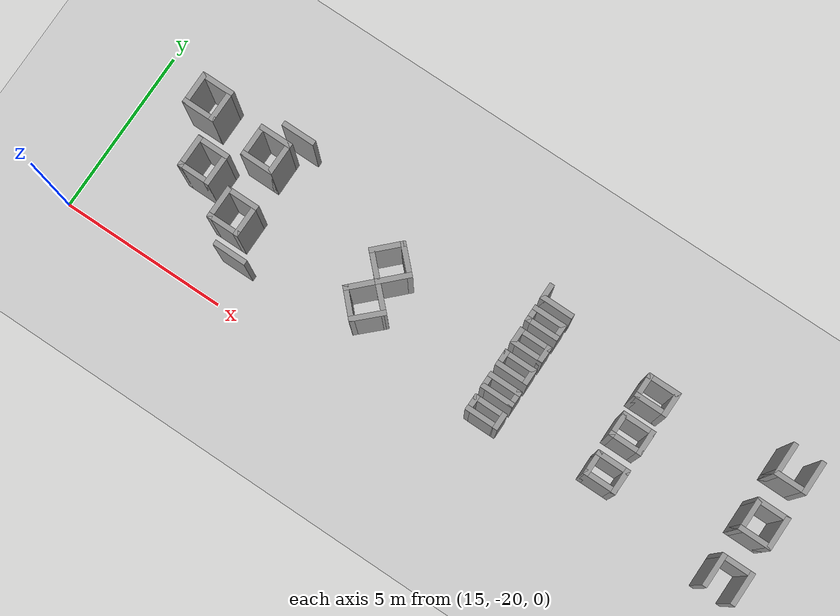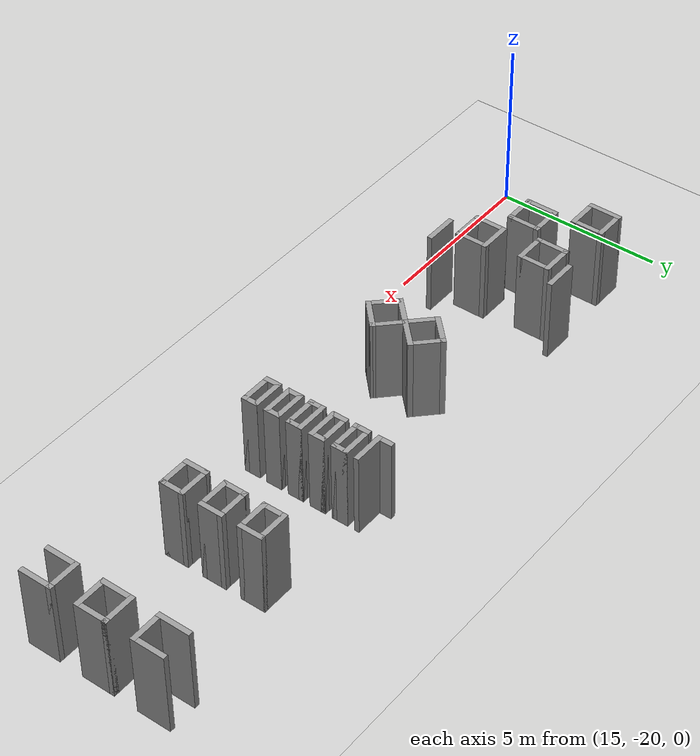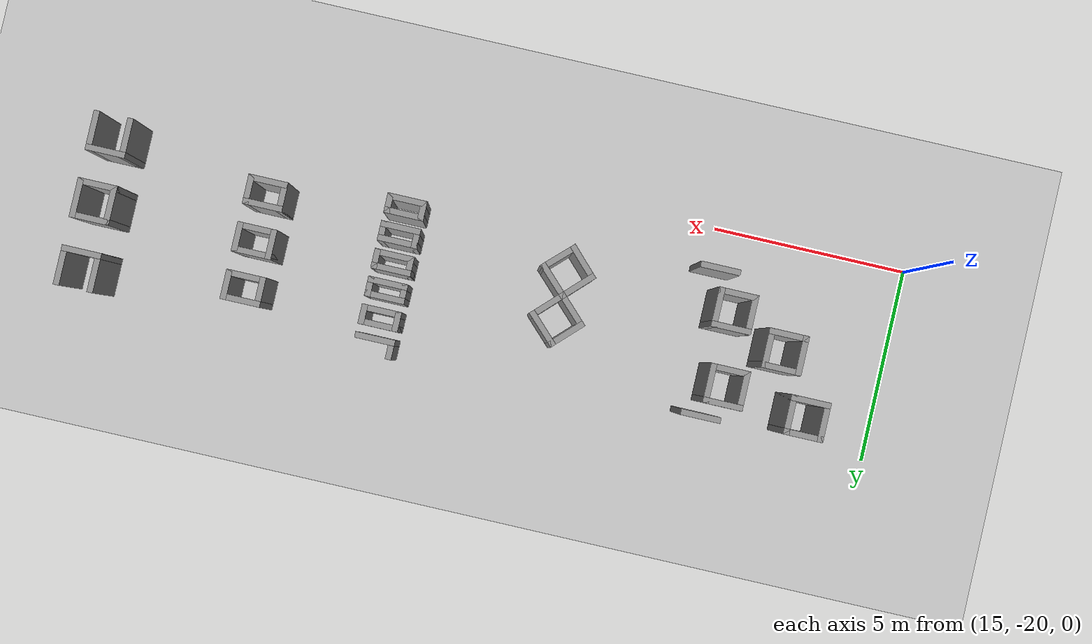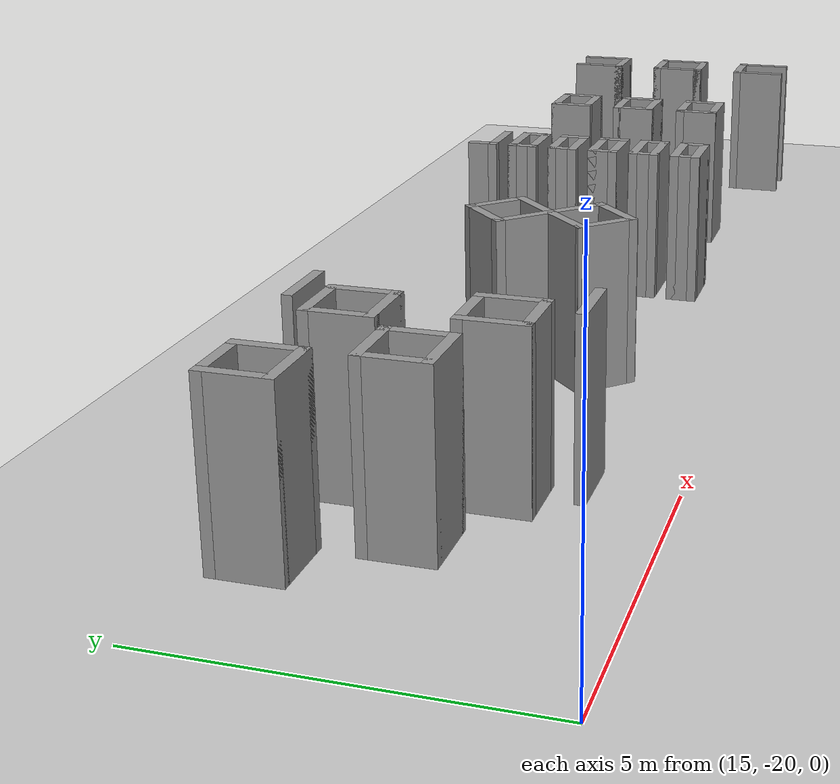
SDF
<sdf version="1.6">
 <world name="default">
  <model name="ground_plane">
   <static>1</static>
   <link name="link">
    <collision name="collision">
     <geometry><plane><normal>0 0 1</normal><size>300 300</size></plane></geometry>
     <surface>
      <contact><collide_bitmask>65535</collide_bitmask></contact>
      <friction><ode><mu>100</mu><mu2>50</mu2></ode></friction>
     </surface>
    </collision>
    <visual name="visual">
     <cast_shadows>0</cast_shadows>
     <geometry><plane><normal>0 0 1</normal><size>300 300</size></plane></geometry>
     <material>
      <script><uri>file://media/materials/scripts/gazebo.material</uri><name>Gazebo/Grey</name></script>
     </material>
    </visual>
   </link>
  </model>
  <model name="NIK">
   <pose>-0.005548 -3.7937 0 0 -0 0</pose>
   <link name="Wall_262">
    <collision name="Wall_262_Collision">
     <geometry><box><size>1 0.15 2.5</size></box></geometry>
     <pose>0 0 1.25 0 -0 0</pose>
    </collision>
    <visual name="Wall_262_Visual">
     <pose>0 0 1.25 0 -0 0</pose>
     <geometry><box><size>1 0.15 2.5</size></box></geometry>
     <material>
      <script><uri>file://media/materials/scripts/gazebo.material</uri><name>Gazebo/Grey</name></script>
      <ambient>1 1 1 1</ambient>
     </material>
     <meta><layer>0</layer></meta>
    </visual>
    <pose>16.626 -11.9351 0 0 -0 -1.5708</pose>
   </link>
   <link name="Wall_263">
    <collision name="Wall_263_Collision">
     <geometry><box><size>1 0.15 2.5</size></box></geometry>
     <pose>0 0 1.25 0 -0 0</pose>
    </collision>
    <visual name="Wall_263_Visual">
     <pose>0 0 1.25 0 -0 0</pose>
     <geometry><box><size>1 0.15 2.5</size></box></geometry>
     <material>
      <script><uri>file://media/materials/scripts/gazebo.material</uri><name>Gazebo/Grey</name></script>
      <ambient>1 1 1 1</ambient>
     </material>
     <meta><layer>0</layer></meta>
    </visual>
    <pose>17.051 -12.3601 0 0 -0 0</pose>
   </link>
   <link name="Wall_264">
    <collision name="Wall_264_Collision">
     <geometry><box><size>1 0.15 2.5</size></box></geometry>
     <pose>0 0 1.25 0 -0 0</pose>
    </collision>
    <visual name="Wall_264_Visual">
     <pose>0 0 1.25 0 -0 0</pose>
     <geometry><box><size>1 0.15 2.5</size></box></geometry>
     <material>
      <script><uri>file://media/materials/scripts/gazebo.material</uri><name>Gazebo/Grey</name></script>
      <ambient>1 1 1 1</ambient>
     </material>
     <meta><layer>0</layer></meta>
    </visual>
    <pose>17.476 -11.9351 0 0 -0 1.5708</pose>
   </link>
   <link name="Wall_265">
    <collision name="Wall_265_Collision">
     <geometry><box><size>1 0.15 2.5</size></box></geometry>
     <pose>0 0 1.25 0 -0 0</pose>
    </collision>
    <visual name="Wall_265_Visual">
     <pose>0 0 1.25 0 -0 0</pose>
     <geometry><box><size>1 0.15 2.5</size></box></geometry>
     <material>
      <script><uri>file://media/materials/scripts/gazebo.material</uri><name>Gazebo/Grey</name></script>
      <ambient>1 1 1 1</ambient>
     </material>
     <meta><layer>0</layer></meta>
    </visual>
    <pose>17.051 -11.5101 0 0 -0 3.14159</pose>
   </link>
   <link name="Wall_267">
    <collision name="Wall_267_Collision">
     <geometry><box><size>1 0.15 2.5</size></box></geometry>
     <pose>0 0 1.25 0 -0 0</pose>
    </collision>
    <visual name="Wall_267_Visual">
     <pose>0 0 1.25 0 -0 0</pose>
     <geometry><box><size>1 0.15 2.5</size></box></geometry>
     <material>
      <script><uri>file://media/materials/scripts/gazebo.material</uri><name>Gazebo/Grey</name></script>
      <ambient>1 1 1 1</ambient>
     </material>
     <meta><layer>0</layer></meta>
    </visual>
    <pose>17.5056 -13.4089 0 0 -0 -1.5708</pose>
   </link>
   <link name="Wall_268">
    <collision name="Wall_268_Collision">
     <geometry><box><size>1 0.15 2.5</size></box></geometry>
     <pose>0 0 1.25 0 -0 0</pose>
    </collision>
    <visual name="Wall_268_Visual">
     <pose>0 0 1.25 0 -0 0</pose>
     <geometry><box><size>1 0.15 2.5</size></box></geometry>
     <material>
      <script><uri>file://media/materials/scripts/gazebo.material</uri><name>Gazebo/Grey</name></script>
      <ambient>1 1 1 1</ambient>
     </material>
     <meta><layer>0</layer></meta>
    </visual>
    <pose>17.9306 -13.8339 0 0 -0 0</pose>
   </link>
   <link name="Wall_269">
    <collision name="Wall_269_Collision">
     <geometry><box><size>1 0.15 2.5</size></box></geometry>
     <pose>0 0 1.25 0 -0 0</pose>
    </collision>
    <visual name="Wall_269_Visual">
     <pose>0 0 1.25 0 -0 0</pose>
     <geometry><box><size>1 0.15 2.5</size></box></geometry>
     <material>
      <script><uri>file://media/materials/scripts/gazebo.material</uri><name>Gazebo/Grey</name></script>
      <ambient>1 1 1 1</ambient>
     </material>
     <meta><layer>0</layer></meta>
    </visual>
    <pose>18.3556 -13.4089 0 0 -0 1.5708</pose>
   </link>
   <link name="Wall_270">
    <collision name="Wall_270_Collision">
     <geometry><box><size>1 0.15 2.5</size></box></geometry>
     <pose>0 0 1.25 0 -0 0</pose>
    </collision>
    <visual name="Wall_270_Visual">
     <pose>0 0 1.25 0 -0 0</pose>
     <geometry><box><size>1 0.15 2.5</size></box></geometry>
     <material>
      <script><uri>file://media/materials/scripts/gazebo.material</uri><name>Gazebo/Grey</name></script>
      <ambient>1 1 1 1</ambient>
     </material>
     <meta><layer>0</layer></meta>
    </visual>
    <pose>17.9306 -12.9839 0 0 -0 3.14159</pose>
   </link>
   <link name="Wall_272">
    <collision name="Wall_272_Collision">
     <geometry><box><size>1 0.15 2.5</size></box></geometry>
     <pose>0 0 1.25 0 -0 0</pose>
    </collision>
    <visual name="Wall_272_Visual">
     <pose>0 0 1.25 0 -0 0</pose>
     <geometry><box><size>1 0.15 2.5</size></box></geometry>
     <material>
      <script><uri>file://media/materials/scripts/gazebo.material</uri><name>Gazebo/Grey</name></script>
      <ambient>1 1 1 1</ambient>
     </material>
     <meta><layer>0</layer></meta>
    </visual>
    <pose>18.7179 -12.2441 0 0 -0 -1.5708</pose>
   </link>
   <link name="Wall_273">
    <collision name="Wall_273_Collision">
     <geometry><box><size>1 0.15 2.5</size></box></geometry>
     <pose>0 0 1.25 0 -0 0</pose>
    </collision>
    <visual name="Wall_273_Visual">
     <pose>0 0 1.25 0 -0 0</pose>
     <geometry><box><size>1 0.15 2.5</size></box></geometry>
     <material>
      <script><uri>file://media/materials/scripts/gazebo.material</uri><name>Gazebo/Grey</name></script>
      <ambient>1 1 1 1</ambient>
     </material>
     <meta><layer>0</layer></meta>
    </visual>
    <pose>19.1429 -12.6691 0 0 -0 0</pose>
   </link>
   <link name="Wall_274">
    <collision name="Wall_274_Collision">
     <geometry><box><size>1 0.15 2.5</size></box></geometry>
     <pose>0 0 1.25 0 -0 0</pose>
    </collision>
    <visual name="Wall_274_Visual">
     <pose>0 0 1.25 0 -0 0</pose>
     <geometry><box><size>1 0.15 2.5</size></box></geometry>
     <material>
      <script><uri>file://media/materials/scripts/gazebo.material</uri><name>Gazebo/Grey</name></script>
      <ambient>1 1 1 1</ambient>
     </material>
     <meta><layer>0</layer></meta>
    </visual>
    <pose>19.5679 -12.2441 0 0 -0 1.5708</pose>
   </link>
   <link name="Wall_275">
    <collision name="Wall_275_Collision">
     <geometry><box><size>1 0.15 2.5</size></box></geometry>
     <pose>0 0 1.25 0 -0 0</pose>
    </collision>
    <visual name="Wall_275_Visual">
     <pose>0 0 1.25 0 -0 0</pose>
     <geometry><box><size>1 0.15 2.5</size></box></geometry>
     <material>
      <script><uri>file://media/materials/scripts/gazebo.material</uri><name>Gazebo/Grey</name></script>
      <ambient>1 1 1 1</ambient>
     </material>
     <meta><layer>0</layer></meta>
    </visual>
    <pose>19.1429 -11.8191 0 0 -0 3.14159</pose>
   </link>
   <link name="Wall_277">
    <collision name="Wall_277_Collision">
     <geometry><box><size>1 0.15 2.5</size></box></geometry>
     <pose>0 0 1.25 0 -0 0</pose>
    </collision>
    <visual name="Wall_277_Visual">
     <pose>0 0 1.25 0 -0 0</pose>
     <geometry><box><size>1 0.15 2.5</size></box></geometry>
     <material>
      <script><uri>file://media/materials/scripts/gazebo.material</uri><name>Gazebo/Grey</name></script>
      <ambient>1 1 1 1</ambient>
     </material>
     <meta><layer>0</layer></meta>
    </visual>
    <pose>18.9319 -14.1101 0 0 -0 -1.5708</pose>
   </link>
   <link name="Wall_278">
    <collision name="Wall_278_Collision">
     <geometry><box><size>1 0.15 2.5</size></box></geometry>
     <pose>0 0 1.25 0 -0 0</pose>
    </collision>
    <visual name="Wall_278_Visual">
     <pose>0 0 1.25 0 -0 0</pose>
     <geometry><box><size>1 0.15 2.5</size></box></geometry>
     <material>
      <script><uri>file://media/materials/scripts/gazebo.material</uri><name>Gazebo/Grey</name></script>
      <ambient>1 1 1 1</ambient>
     </material>
     <meta><layer>0</layer></meta>
    </visual>
    <pose>19.3569 -14.5351 0 0 -0 0</pose>
   </link>
   <link name="Wall_279">
    <collision name="Wall_279_Collision">
     <geometry><box><size>1 0.15 2.5</size></box></geometry>
     <pose>0 0 1.25 0 -0 0</pose>
    </collision>
    <visual name="Wall_279_Visual">
     <pose>0 0 1.25 0 -0 0</pose>
     <geometry><box><size>1 0.15 2.5</size></box></geometry>
     <material>
      <script><uri>file://media/materials/scripts/gazebo.material</uri><name>Gazebo/Grey</name></script>
      <ambient>1 1 1 1</ambient>
     </material>
     <meta><layer>0</layer></meta>
    </visual>
    <pose>19.7819 -14.1101 0 0 -0 1.5708</pose>
   </link>
   <link name="Wall_280">
    <collision name="Wall_280_Collision">
     <geometry><box><size>1 0.15 2.5</size></box></geometry>
     <pose>0 0 1.25 0 -0 0</pose>
    </collision>
    <visual name="Wall_280_Visual">
     <pose>0 0 1.25 0 -0 0</pose>
     <geometry><box><size>1 0.15 2.5</size></box></geometry>
     <material>
      <script><uri>file://media/materials/scripts/gazebo.material</uri><name>Gazebo/Grey</name></script>
      <ambient>1 1 1 1</ambient>
     </material>
     <meta><layer>0</layer></meta>
    </visual>
    <pose>19.3569 -13.6851 0 0 -0 3.14159</pose>
   </link>
   <link name="Wall_283">
    <collision name="Wall_283_Collision">
     <geometry><box><size>1 0.15 2.5</size></box></geometry>
     <pose>0 0 1.25 0 -0 0</pose>
    </collision>
    <visual name="Wall_283_Visual">
     <pose>0 0 1.25 0 -0 0</pose>
     <geometry><box><size>1 0.15 2.5</size></box></geometry>
     <material>
      <script><uri>file://media/materials/scripts/gazebo.material</uri><name>Gazebo/Grey</name></script>
      <ambient>1 1 1 1</ambient>
     </material>
     <meta><layer>0</layer></meta>
    </visual>
    <pose>19.6065 -11.4088 0 0 -0 0</pose>
   </link>
   <link name="Wall_291">
    <collision name="Wall_291_Collision">
     <geometry><box><size>1 0.15 2.5</size></box></geometry>
     <pose>0 0 1.25 0 -0 0</pose>
    </collision>
    <visual name="Wall_291_Visual">
     <pose>0 0 1.25 0 -0 0</pose>
     <geometry><box><size>1 0.15 2.5</size></box></geometry>
     <material>
      <script><uri>file://media/materials/scripts/gazebo.material</uri><name>Gazebo/Grey</name></script>
      <ambient>1 1 1 1</ambient>
     </material>
     <meta><layer>0</layer></meta>
    </visual>
    <pose>19.9274 -15.052 0 0 -0 3.14159</pose>
   </link>
   <link name="Wall_311">
    <collision name="Wall_311_Collision">
     <geometry><box><size>1 0.15 2.5</size></box></geometry>
     <pose>0 0 1.25 0 -0 0</pose>
    </collision>
    <visual name="Wall_311_Visual">
     <pose>0 0 1.25 0 -0 0</pose>
     <geometry><box><size>1 0.15 2.5</size></box></geometry>
     <material>
      <script><uri>file://media/materials/scripts/gazebo.material</uri><name>Gazebo/Grey</name></script>
      <ambient>1 1 1 1</ambient>
     </material>
     <meta><layer>0</layer></meta>
    </visual>
    <pose>35.7405 -14.9025 0 0 -0 1.5708</pose>
   </link>
   <link name="Wall_313">
    <collision name="Wall_313_Collision">
     <geometry><box><size>1 0.15 2.5</size></box></geometry>
     <pose>0 0 1.25 0 -0 0</pose>
    </collision>
    <visual name="Wall_313_Visual">
     <pose>0 0 1.25 0 -0 0</pose>
     <geometry><box><size>1 0.15 2.5</size></box></geometry>
     <material>
      <script><uri>file://media/materials/scripts/gazebo.material</uri><name>Gazebo/Grey</name></script>
      <ambient>1 1 1 1</ambient>
     </material>
     <meta><layer>0</layer></meta>
    </visual>
    <pose>35.7405 -13.2025 0 0 -0 1.5708</pose>
   </link>
   <link name="Wall_315">
    <collision name="Wall_315_Collision">
     <geometry><box><size>1 0.15 2.5</size></box></geometry>
     <pose>0 0 1.25 0 -0 0</pose>
    </collision>
    <visual name="Wall_315_Visual">
     <pose>0 0 1.25 0 -0 0</pose>
     <geometry><box><size>1 0.15 2.5</size></box></geometry>
     <material>
      <script><uri>file://media/materials/scripts/gazebo.material</uri><name>Gazebo/Grey</name></script>
      <ambient>1 1 1 1</ambient>
     </material>
     <meta><layer>0</layer></meta>
    </visual>
    <pose>35.7405 -11.5025 0 0 -0 1.5708</pose>
   </link>
   <link name="Wall_324">
    <collision name="Wall_324_Collision">
     <geometry><box><size>1 0.15 2.5</size></box></geometry>
     <pose>0 0 1.25 0 -0 0</pose>
    </collision>
    <visual name="Wall_324_Visual">
     <pose>0 0 1.25 0 -0 0</pose>
     <geometry><box><size>1 0.15 2.5</size></box></geometry>
     <material>
      <script><uri>file://media/materials/scripts/gazebo.material</uri><name>Gazebo/Grey</name></script>
      <ambient>1 1 1 1</ambient>
     </material>
     <meta><layer>0</layer></meta>
    </visual>
    <pose>34.8905 -11.5025 0 0 -0 -1.5708</pose>
   </link>
   <link name="Wall_325">
    <collision name="Wall_325_Collision">
     <geometry><box><size>1 0.15 2.5</size></box></geometry>
     <pose>0 0 1.25 0 -0 0</pose>
    </collision>
    <visual name="Wall_325_Visual">
     <pose>0 0 1.25 0 -0 0</pose>
     <geometry><box><size>1 0.15 2.5</size></box></geometry>
     <material>
      <script><uri>file://media/materials/scripts/gazebo.material</uri><name>Gazebo/Grey</name></script>
      <ambient>1 1 1 1</ambient>
     </material>
     <meta><layer>0</layer></meta>
    </visual>
    <pose>35.3155 -11.9275 0 0 -0 0</pose>
   </link>
   <link name="Wall_327">
    <collision name="Wall_327_Collision">
     <geometry><box><size>1 0.15 2.5</size></box></geometry>
     <pose>0 0 1.25 0 -0 0</pose>
    </collision>
    <visual name="Wall_327_Visual">
     <pose>0 0 1.25 0 -0 0</pose>
     <geometry><box><size>1 0.15 2.5</size></box></geometry>
     <material>
      <script><uri>file://media/materials/scripts/gazebo.material</uri><name>Gazebo/Grey</name></script>
      <ambient>1 1 1 1</ambient>
     </material>
     <meta><layer>0</layer></meta>
    </visual>
    <pose>35.3155 -12.7775 0 0 -0 3.14159</pose>
   </link>
   <link name="Wall_328">
    <collision name="Wall_328_Collision">
     <geometry><box><size>1 0.15 2.5</size></box></geometry>
     <pose>0 0 1.25 0 -0 0</pose>
    </collision>
    <visual name="Wall_328_Visual">
     <pose>0 0 1.25 0 -0 0</pose>
     <geometry><box><size>1 0.15 2.5</size></box></geometry>
     <material>
      <script><uri>file://media/materials/scripts/gazebo.material</uri><name>Gazebo/Grey</name></script>
      <ambient>1 1 1 1</ambient>
     </material>
     <meta><layer>0</layer></meta>
    </visual>
    <pose>34.8905 -13.2025 0 0 -0 -1.5708</pose>
   </link>
   <link name="Wall_329">
    <collision name="Wall_329_Collision">
     <geometry><box><size>1 0.15 2.5</size></box></geometry>
     <pose>0 0 1.25 0 -0 0</pose>
    </collision>
    <visual name="Wall_329_Visual">
     <pose>0 0 1.25 0 -0 0</pose>
     <geometry><box><size>1 0.15 2.5</size></box></geometry>
     <material>
      <script><uri>file://media/materials/scripts/gazebo.material</uri><name>Gazebo/Grey</name></script>
      <ambient>1 1 1 1</ambient>
     </material>
     <meta><layer>0</layer></meta>
    </visual>
    <pose>35.3155 -13.6275 0 0 -0 0</pose>
   </link>
   <link name="Wall_331">
    <collision name="Wall_331_Collision">
     <geometry><box><size>1 0.15 2.5</size></box></geometry>
     <pose>0 0 1.25 0 -0 0</pose>
    </collision>
    <visual name="Wall_331_Visual">
     <pose>0 0 1.25 0 -0 0</pose>
     <geometry><box><size>1 0.15 2.5</size></box></geometry>
     <material>
      <script><uri>file://media/materials/scripts/gazebo.material</uri><name>Gazebo/Grey</name></script>
      <ambient>1 1 1 1</ambient>
     </material>
     <meta><layer>0</layer></meta>
    </visual>
    <pose>35.3155 -14.4775 0 0 -0 3.14159</pose>
   </link>
   <link name="Wall_332">
    <collision name="Wall_332_Collision">
     <geometry><box><size>1 0.15 2.5</size></box></geometry>
     <pose>0 0 1.25 0 -0 0</pose>
    </collision>
    <visual name="Wall_332_Visual">
     <pose>0 0 1.25 0 -0 0</pose>
     <geometry><box><size>1 0.15 2.5</size></box></geometry>
     <material>
      <script><uri>file://media/materials/scripts/gazebo.material</uri><name>Gazebo/Grey</name></script>
      <ambient>1 1 1 1</ambient>
     </material>
     <meta><layer>0</layer></meta>
    </visual>
    <pose>34.8905 -14.9025 0 0 -0 -1.5708</pose>
   </link>
   <link name="Wall_342">
    <collision name="Wall_342_Collision">
     <geometry><box><size>0.75 0.15 2.5</size></box></geometry>
     <pose>0 0 1.25 0 -0 0</pose>
    </collision>
    <visual name="Wall_342_Visual">
     <pose>0 0 1.25 0 -0 0</pose>
     <geometry><box><size>0.75 0.15 2.5</size></box></geometry>
     <material>
      <script><uri>file://media/materials/scripts/gazebo.material</uri><name>Gazebo/Grey</name></script>
      <ambient>1 1 1 1</ambient>
     </material>
     <meta><layer>0</layer></meta>
    </visual>
    <pose>31.6709 -14.3498 0 0 -0 1.5708</pose>
   </link>
   <link name="Wall_344">
    <collision name="Wall_344_Collision">
     <geometry><box><size>0.75 0.15 2.5</size></box></geometry>
     <pose>0 0 1.25 0 -0 0</pose>
    </collision>
    <visual name="Wall_344_Visual">
     <pose>0 0 1.25 0 -0 0</pose>
     <geometry><box><size>0.75 0.15 2.5</size></box></geometry>
     <material>
      <script><uri>file://media/materials/scripts/gazebo.material</uri><name>Gazebo/Grey</name></script>
      <ambient>1 1 1 1</ambient>
     </material>
     <meta><layer>0</layer></meta>
    </visual>
    <pose>31.6709 -13.1498 0 0 -0 1.5708</pose>
   </link>
   <link name="Wall_353">
    <collision name="Wall_353_Collision">
     <geometry><box><size>0.75 0.15 2.5</size></box></geometry>
     <pose>0 0 1.25 0 -0 0</pose>
    </collision>
    <visual name="Wall_353_Visual">
     <pose>0 0 1.25 0 -0 0</pose>
     <geometry><box><size>0.75 0.15 2.5</size></box></geometry>
     <material>
      <script><uri>file://media/materials/scripts/gazebo.material</uri><name>Gazebo/Grey</name></script>
      <ambient>1 1 1 1</ambient>
     </material>
     <meta><layer>0</layer></meta>
    </visual>
    <pose>31.6709 -11.9498 0 0 -0 -1.5708</pose>
   </link>
   <link name="Wall_359">
    <collision name="Wall_359_Collision">
     <geometry><box><size>1 0.15 2.5</size></box></geometry>
     <pose>0 0 1.25 0 -0 0</pose>
    </collision>
    <visual name="Wall_359_Visual">
     <pose>0 0 1.25 0 -0 0</pose>
     <geometry><box><size>1 0.15 2.5</size></box></geometry>
     <material>
      <script><uri>file://media/materials/scripts/gazebo.material</uri><name>Gazebo/Grey</name></script>
      <ambient>1 1 1 1</ambient>
     </material>
     <meta><layer>0</layer></meta>
    </visual>
    <pose>31.2459 -11.6498 0 0 -0 3.14159</pose>
   </link>
   <link name="Wall_360">
    <collision name="Wall_360_Collision">
     <geometry><box><size>0.75 0.15 2.5</size></box></geometry>
     <pose>0 0 1.25 0 -0 0</pose>
    </collision>
    <visual name="Wall_360_Visual">
     <pose>0 0 1.25 0 -0 0</pose>
     <geometry><box><size>0.75 0.15 2.5</size></box></geometry>
     <material>
      <script><uri>file://media/materials/scripts/gazebo.material</uri><name>Gazebo/Grey</name></script>
      <ambient>1 1 1 1</ambient>
     </material>
     <meta><layer>0</layer></meta>
    </visual>
    <pose>30.8209 -11.9498 0 0 -0 -1.5708</pose>
   </link>
   <link name="Wall_361">
    <collision name="Wall_361_Collision">
     <geometry><box><size>1 0.15 2.5</size></box></geometry>
     <pose>0 0 1.25 0 -0 0</pose>
    </collision>
    <visual name="Wall_361_Visual">
     <pose>0 0 1.25 0 -0 0</pose>
     <geometry><box><size>1 0.15 2.5</size></box></geometry>
     <material>
      <script><uri>file://media/materials/scripts/gazebo.material</uri><name>Gazebo/Grey</name></script>
      <ambient>1 1 1 1</ambient>
     </material>
     <meta><layer>0</layer></meta>
    </visual>
    <pose>31.2459 -12.2498 0 0 -0 0</pose>
   </link>
   <link name="Wall_363">
    <collision name="Wall_363_Collision">
     <geometry><box><size>1 0.15 2.5</size></box></geometry>
     <pose>0 0 1.25 0 -0 0</pose>
    </collision>
    <visual name="Wall_363_Visual">
     <pose>0 0 1.25 0 -0 0</pose>
     <geometry><box><size>1 0.15 2.5</size></box></geometry>
     <material>
      <script><uri>file://media/materials/scripts/gazebo.material</uri><name>Gazebo/Grey</name></script>
      <ambient>1 1 1 1</ambient>
     </material>
     <meta><layer>0</layer></meta>
    </visual>
    <pose>31.2459 -12.8498 0 0 -0 3.14159</pose>
   </link>
   <link name="Wall_364">
    <collision name="Wall_364_Collision">
     <geometry><box><size>0.75 0.15 2.5</size></box></geometry>
     <pose>0 0 1.25 0 -0 0</pose>
    </collision>
    <visual name="Wall_364_Visual">
     <pose>0 0 1.25 0 -0 0</pose>
     <geometry><box><size>0.75 0.15 2.5</size></box></geometry>
     <material>
      <script><uri>file://media/materials/scripts/gazebo.material</uri><name>Gazebo/Grey</name></script>
      <ambient>1 1 1 1</ambient>
     </material>
     <meta><layer>0</layer></meta>
    </visual>
    <pose>30.8209 -13.1498 0 0 -0 -1.5708</pose>
   </link>
   <link name="Wall_365">
    <collision name="Wall_365_Collision">
     <geometry><box><size>1 0.15 2.5</size></box></geometry>
     <pose>0 0 1.25 0 -0 0</pose>
    </collision>
    <visual name="Wall_365_Visual">
     <pose>0 0 1.25 0 -0 0</pose>
     <geometry><box><size>1 0.15 2.5</size></box></geometry>
     <material>
      <script><uri>file://media/materials/scripts/gazebo.material</uri><name>Gazebo/Grey</name></script>
      <ambient>1 1 1 1</ambient>
     </material>
     <meta><layer>0</layer></meta>
    </visual>
    <pose>31.2459 -13.4498 0 0 -0 0</pose>
   </link>
   <link name="Wall_367">
    <collision name="Wall_367_Collision">
     <geometry><box><size>1 0.15 2.5</size></box></geometry>
     <pose>0 0 1.25 0 -0 0</pose>
    </collision>
    <visual name="Wall_367_Visual">
     <pose>0 0 1.25 0 -0 0</pose>
     <geometry><box><size>1 0.15 2.5</size></box></geometry>
     <material>
      <script><uri>file://media/materials/scripts/gazebo.material</uri><name>Gazebo/Grey</name></script>
      <ambient>1 1 1 1</ambient>
     </material>
     <meta><layer>0</layer></meta>
    </visual>
    <pose>31.2459 -14.0498 0 0 -0 3.14159</pose>
   </link>
   <link name="Wall_368">
    <collision name="Wall_368_Collision">
     <geometry><box><size>0.75 0.15 2.5</size></box></geometry>
     <pose>0 0 1.25 0 -0 0</pose>
    </collision>
    <visual name="Wall_368_Visual">
     <pose>0 0 1.25 0 -0 0</pose>
     <geometry><box><size>0.75 0.15 2.5</size></box></geometry>
     <material>
      <script><uri>file://media/materials/scripts/gazebo.material</uri><name>Gazebo/Grey</name></script>
      <ambient>1 1 1 1</ambient>
     </material>
     <meta><layer>0</layer></meta>
    </visual>
    <pose>30.8209 -14.3498 0 0 -0 -1.5708</pose>
   </link>
   <link name="Wall_369">
    <collision name="Wall_369_Collision">
     <geometry><box><size>1 0.15 2.5</size></box></geometry>
     <pose>0 0 1.25 0 -0 0</pose>
    </collision>
    <visual name="Wall_369_Visual">
     <pose>0 0 1.25 0 -0 0</pose>
     <geometry><box><size>1 0.15 2.5</size></box></geometry>
     <material>
      <script><uri>file://media/materials/scripts/gazebo.material</uri><name>Gazebo/Grey</name></script>
      <ambient>1 1 1 1</ambient>
     </material>
     <meta><layer>0</layer></meta>
    </visual>
    <pose>31.2459 -14.6498 0 0 -0 0</pose>
   </link>
   <link name="Wall_384">
    <collision name="Wall_384_Collision">
     <geometry><box><size>0.5 0.15 2.5</size></box></geometry>
     <pose>0 0 1.25 0 -0 0</pose>
    </collision>
    <visual name="Wall_384_Visual">
     <pose>0 0 1.25 0 -0 0</pose>
     <geometry><box><size>0.5 0.15 2.5</size></box></geometry>
     <material>
      <script><uri>file://media/materials/scripts/gazebo.material</uri><name>Gazebo/Grey</name></script>
      <ambient>1 1 1 1</ambient>
     </material>
     <meta><layer>0</layer></meta>
    </visual>
    <pose>28.2363 -14.7906 0 0 -0 1.5708</pose>
   </link>
   <link name="Wall_386">
    <collision name="Wall_386_Collision">
     <geometry><box><size>0.5 0.15 2.5</size></box></geometry>
     <pose>0 0 1.25 0 -0 0</pose>
    </collision>
    <visual name="Wall_386_Visual">
     <pose>0 0 1.25 0 -0 0</pose>
     <geometry><box><size>0.5 0.15 2.5</size></box></geometry>
     <material>
      <script><uri>file://media/materials/scripts/gazebo.material</uri><name>Gazebo/Grey</name></script>
      <ambient>1 1 1 1</ambient>
     </material>
     <meta><layer>0</layer></meta>
    </visual>
    <pose>28.2363 -14.0906 0 0 -0 1.5708</pose>
   </link>
   <link name="Wall_388">
    <collision name="Wall_388_Collision">
     <geometry><box><size>0.5 0.15 2.5</size></box></geometry>
     <pose>0 0 1.25 0 -0 0</pose>
    </collision>
    <visual name="Wall_388_Visual">
     <pose>0 0 1.25 0 -0 0</pose>
     <geometry><box><size>0.5 0.15 2.5</size></box></geometry>
     <material>
      <script><uri>file://media/materials/scripts/gazebo.material</uri><name>Gazebo/Grey</name></script>
      <ambient>1 1 1 1</ambient>
     </material>
     <meta><layer>0</layer></meta>
    </visual>
    <pose>28.2363 -13.3906 0 0 -0 1.5708</pose>
   </link>
   <link name="Wall_390">
    <collision name="Wall_390_Collision">
     <geometry><box><size>0.5 0.15 2.5</size></box></geometry>
     <pose>0 0 1.25 0 -0 0</pose>
    </collision>
    <visual name="Wall_390_Visual">
     <pose>0 0 1.25 0 -0 0</pose>
     <geometry><box><size>0.5 0.15 2.5</size></box></geometry>
     <material>
      <script><uri>file://media/materials/scripts/gazebo.material</uri><name>Gazebo/Grey</name></script>
      <ambient>1 1 1 1</ambient>
     </material>
     <meta><layer>0</layer></meta>
    </visual>
    <pose>28.2363 -12.6906 0 0 -0 1.5708</pose>
   </link>
   <link name="Wall_392">
    <collision name="Wall_392_Collision">
     <geometry><box><size>0.5 0.15 2.5</size></box></geometry>
     <pose>0 0 1.25 0 -0 0</pose>
    </collision>
    <visual name="Wall_392_Visual">
     <pose>0 0 1.25 0 -0 0</pose>
     <geometry><box><size>0.5 0.15 2.5</size></box></geometry>
     <material>
      <script><uri>file://media/materials/scripts/gazebo.material</uri><name>Gazebo/Grey</name></script>
      <ambient>1 1 1 1</ambient>
     </material>
     <meta><layer>0</layer></meta>
    </visual>
    <pose>28.2363 -11.9906 0 0 -0 1.5708</pose>
   </link>
   <link name="Wall_410">
    <collision name="Wall_410_Collision">
     <geometry><box><size>1 0.15 2.5</size></box></geometry>
     <pose>0 0 1.25 0 -0 0</pose>
    </collision>
    <visual name="Wall_410_Visual">
     <pose>0 0 1.25 0 -0 0</pose>
     <geometry><box><size>1 0.15 2.5</size></box></geometry>
     <material>
      <script><uri>file://media/materials/scripts/gazebo.material</uri><name>Gazebo/Grey</name></script>
      <ambient>1 1 1 1</ambient>
     </material>
     <meta><layer>0</layer></meta>
    </visual>
    <pose>27.8113 -14.9656 0 0 -0 3.14159</pose>
   </link>
   <link name="Wall_411">
    <collision name="Wall_411_Collision">
     <geometry><box><size>0.5 0.15 2.5</size></box></geometry>
     <pose>0 0 1.25 0 -0 0</pose>
    </collision>
    <visual name="Wall_411_Visual">
     <pose>0 0 1.25 0 -0 0</pose>
     <geometry><box><size>0.5 0.15 2.5</size></box></geometry>
     <material>
      <script><uri>file://media/materials/scripts/gazebo.material</uri><name>Gazebo/Grey</name></script>
      <ambient>1 1 1 1</ambient>
     </material>
     <meta><layer>0</layer></meta>
    </visual>
    <pose>27.3863 -14.7906 0 0 -0 1.5708</pose>
   </link>
   <link name="Wall_412">
    <collision name="Wall_412_Collision">
     <geometry><box><size>1 0.15 2.5</size></box></geometry>
     <pose>0 0 1.25 0 -0 0</pose>
    </collision>
    <visual name="Wall_412_Visual">
     <pose>0 0 1.25 0 -0 0</pose>
     <geometry><box><size>1 0.15 2.5</size></box></geometry>
     <material>
      <script><uri>file://media/materials/scripts/gazebo.material</uri><name>Gazebo/Grey</name></script>
      <ambient>1 1 1 1</ambient>
     </material>
     <meta><layer>0</layer></meta>
    </visual>
    <pose>27.8113 -14.6156 0 0 -0 0</pose>
   </link>
   <link name="Wall_414">
    <collision name="Wall_414_Collision">
     <geometry><box><size>1 0.15 2.5</size></box></geometry>
     <pose>0 0 1.25 0 -0 0</pose>
    </collision>
    <visual name="Wall_414_Visual">
     <pose>0 0 1.25 0 -0 0</pose>
     <geometry><box><size>1 0.15 2.5</size></box></geometry>
     <material>
      <script><uri>file://media/materials/scripts/gazebo.material</uri><name>Gazebo/Grey</name></script>
      <ambient>1 1 1 1</ambient>
     </material>
     <meta><layer>0</layer></meta>
    </visual>
    <pose>27.8113 -14.2656 0 0 -0 3.14159</pose>
   </link>
   <link name="Wall_415">
    <collision name="Wall_415_Collision">
     <geometry><box><size>0.5 0.15 2.5</size></box></geometry>
     <pose>0 0 1.25 0 -0 0</pose>
    </collision>
    <visual name="Wall_415_Visual">
     <pose>0 0 1.25 0 -0 0</pose>
     <geometry><box><size>0.5 0.15 2.5</size></box></geometry>
     <material>
      <script><uri>file://media/materials/scripts/gazebo.material</uri><name>Gazebo/Grey</name></script>
      <ambient>1 1 1 1</ambient>
     </material>
     <meta><layer>0</layer></meta>
    </visual>
    <pose>27.3863 -14.0906 0 0 -0 1.5708</pose>
   </link>
   <link name="Wall_416">
    <collision name="Wall_416_Collision">
     <geometry><box><size>1 0.15 2.5</size></box></geometry>
     <pose>0 0 1.25 0 -0 0</pose>
    </collision>
    <visual name="Wall_416_Visual">
     <pose>0 0 1.25 0 -0 0</pose>
     <geometry><box><size>1 0.15 2.5</size></box></geometry>
     <material>
      <script><uri>file://media/materials/scripts/gazebo.material</uri><name>Gazebo/Grey</name></script>
      <ambient>1 1 1 1</ambient>
     </material>
     <meta><layer>0</layer></meta>
    </visual>
    <pose>27.8113 -13.9156 0 0 -0 0</pose>
   </link>
   <link name="Wall_418">
    <collision name="Wall_418_Collision">
     <geometry><box><size>1 0.15 2.5</size></box></geometry>
     <pose>0 0 1.25 0 -0 0</pose>
    </collision>
    <visual name="Wall_418_Visual">
     <pose>0 0 1.25 0 -0 0</pose>
     <geometry><box><size>1 0.15 2.5</size></box></geometry>
     <material>
      <script><uri>file://media/materials/scripts/gazebo.material</uri><name>Gazebo/Grey</name></script>
      <ambient>1 1 1 1</ambient>
     </material>
     <meta><layer>0</layer></meta>
    </visual>
    <pose>27.8113 -13.5656 0 0 -0 3.14159</pose>
   </link>
   <link name="Wall_419">
    <collision name="Wall_419_Collision">
     <geometry><box><size>0.5 0.15 2.5</size></box></geometry>
     <pose>0 0 1.25 0 -0 0</pose>
    </collision>
    <visual name="Wall_419_Visual">
     <pose>0 0 1.25 0 -0 0</pose>
     <geometry><box><size>0.5 0.15 2.5</size></box></geometry>
     <material>
      <script><uri>file://media/materials/scripts/gazebo.material</uri><name>Gazebo/Grey</name></script>
      <ambient>1 1 1 1</ambient>
     </material>
     <meta><layer>0</layer></meta>
    </visual>
    <pose>27.3863 -13.3906 0 0 -0 1.5708</pose>
   </link>
   <link name="Wall_420">
    <collision name="Wall_420_Collision">
     <geometry><box><size>1 0.15 2.5</size></box></geometry>
     <pose>0 0 1.25 0 -0 0</pose>
    </collision>
    <visual name="Wall_420_Visual">
     <pose>0 0 1.25 0 -0 0</pose>
     <geometry><box><size>1 0.15 2.5</size></box></geometry>
     <material>
      <script><uri>file://media/materials/scripts/gazebo.material</uri><name>Gazebo/Grey</name></script>
      <ambient>1 1 1 1</ambient>
     </material>
     <meta><layer>0</layer></meta>
    </visual>
    <pose>27.8113 -13.2156 0 0 -0 0</pose>
   </link>
   <link name="Wall_422">
    <collision name="Wall_422_Collision">
     <geometry><box><size>1 0.15 2.5</size></box></geometry>
     <pose>0 0 1.25 0 -0 0</pose>
    </collision>
    <visual name="Wall_422_Visual">
     <pose>0 0 1.25 0 -0 0</pose>
     <geometry><box><size>1 0.15 2.5</size></box></geometry>
     <material>
      <script><uri>file://media/materials/scripts/gazebo.material</uri><name>Gazebo/Grey</name></script>
      <ambient>1 1 1 1</ambient>
     </material>
     <meta><layer>0</layer></meta>
    </visual>
    <pose>27.8113 -12.8656 0 0 -0 3.14159</pose>
   </link>
   <link name="Wall_423">
    <collision name="Wall_423_Collision">
     <geometry><box><size>0.5 0.15 2.5</size></box></geometry>
     <pose>0 0 1.25 0 -0 0</pose>
    </collision>
    <visual name="Wall_423_Visual">
     <pose>0 0 1.25 0 -0 0</pose>
     <geometry><box><size>0.5 0.15 2.5</size></box></geometry>
     <material>
      <script><uri>file://media/materials/scripts/gazebo.material</uri><name>Gazebo/Grey</name></script>
      <ambient>1 1 1 1</ambient>
     </material>
     <meta><layer>0</layer></meta>
    </visual>
    <pose>27.3863 -12.6906 0 0 -0 1.5708</pose>
   </link>
   <link name="Wall_424">
    <collision name="Wall_424_Collision">
     <geometry><box><size>1 0.15 2.5</size></box></geometry>
     <pose>0 0 1.25 0 -0 0</pose>
    </collision>
    <visual name="Wall_424_Visual">
     <pose>0 0 1.25 0 -0 0</pose>
     <geometry><box><size>1 0.15 2.5</size></box></geometry>
     <material>
      <script><uri>file://media/materials/scripts/gazebo.material</uri><name>Gazebo/Grey</name></script>
      <ambient>1 1 1 1</ambient>
     </material>
     <meta><layer>0</layer></meta>
    </visual>
    <pose>27.8113 -12.5156 0 0 -0 0</pose>
   </link>
   <link name="Wall_426">
    <collision name="Wall_426_Collision">
     <geometry><box><size>1 0.15 2.5</size></box></geometry>
     <pose>0 0 1.25 0 -0 0</pose>
    </collision>
    <visual name="Wall_426_Visual">
     <pose>0 0 1.25 0 -0 0</pose>
     <geometry><box><size>1 0.15 2.5</size></box></geometry>
     <material>
      <script><uri>file://media/materials/scripts/gazebo.material</uri><name>Gazebo/Grey</name></script>
      <ambient>1 1 1 1</ambient>
     </material>
     <meta><layer>0</layer></meta>
    </visual>
    <pose>27.8113 -12.1656 0 0 -0 3.14159</pose>
   </link>
   <link name="Wall_427">
    <collision name="Wall_427_Collision">
     <geometry><box><size>0.5 0.15 2.5</size></box></geometry>
     <pose>0 0 1.25 0 -0 0</pose>
    </collision>
    <visual name="Wall_427_Visual">
     <pose>0 0 1.25 0 -0 0</pose>
     <geometry><box><size>0.5 0.15 2.5</size></box></geometry>
     <material>
      <script><uri>file://media/materials/scripts/gazebo.material</uri><name>Gazebo/Grey</name></script>
      <ambient>1 1 1 1</ambient>
     </material>
     <meta><layer>0</layer></meta>
    </visual>
    <pose>27.3863 -11.9906 0 0 -0 1.5708</pose>
   </link>
   <link name="Wall_428">
    <collision name="Wall_428_Collision">
     <geometry><box><size>1 0.15 2.5</size></box></geometry>
     <pose>0 0 1.25 0 -0 0</pose>
    </collision>
    <visual name="Wall_428_Visual">
     <pose>0 0 1.25 0 -0 0</pose>
     <geometry><box><size>1 0.15 2.5</size></box></geometry>
     <material>
      <script><uri>file://media/materials/scripts/gazebo.material</uri><name>Gazebo/Grey</name></script>
      <ambient>1 1 1 1</ambient>
     </material>
     <meta><layer>0</layer></meta>
    </visual>
    <pose>27.8113 -11.8156 0 0 -0 0</pose>
   </link>
   <link name="Wall_430">
    <collision name="Wall_430_Collision">
     <geometry><box><size>1 0.15 2.5</size></box></geometry>
     <pose>0 0 1.25 0 -0 0</pose>
    </collision>
    <visual name="Wall_430_Visual">
     <pose>0 0 1.25 0 -0 0</pose>
     <geometry><box><size>1 0.15 2.5</size></box></geometry>
     <material>
      <script><uri>file://media/materials/scripts/gazebo.material</uri><name>Gazebo/Grey</name></script>
      <ambient>1 1 1 1</ambient>
     </material>
     <meta><layer>0</layer></meta>
    </visual>
    <pose>27.8113 -11.4656 0 0 -0 3.14159</pose>
   </link>
   <link name="Wall_431">
    <collision name="Wall_431_Collision">
     <geometry><box><size>0.5 0.15 2.5</size></box></geometry>
     <pose>0 0 1.25 0 -0 0</pose>
    </collision>
    <visual name="Wall_431_Visual">
     <pose>0 0 1.25 0 -0 0</pose>
     <geometry><box><size>0.5 0.15 2.5</size></box></geometry>
     <material>
      <script><uri>file://media/materials/scripts/gazebo.material</uri><name>Gazebo/Grey</name></script>
      <ambient>1 1 1 1</ambient>
     </material>
     <meta><layer>0</layer></meta>
    </visual>
    <pose>27.3863 -11.2906 0 0 -0 1.5708</pose>
   </link>
   <link name="Wall_455">
    <collision name="Wall_455_Collision">
     <geometry><box><size>1 0.15 2.5</size></box></geometry>
     <pose>0 0 1.25 0 -0 0</pose>
    </collision>
    <visual name="Wall_455_Visual">
     <pose>0 0 1.25 0 -0 0</pose>
     <geometry><box><size>1 0.15 2.5</size></box></geometry>
     <material>
      <script><uri>file://media/materials/scripts/gazebo.material</uri><name>Gazebo/Grey</name></script>
      <ambient>1 1 1 1</ambient>
     </material>
     <meta><layer>0</layer></meta>
    </visual>
    <pose>23.8617 -12.6277 0 0 -0 -0.785398</pose>
   </link>
   <link name="Wall_456">
    <collision name="Wall_456_Collision">
     <geometry><box><size>1 0.15 2.5</size></box></geometry>
     <pose>0 0 1.25 0 -0 0</pose>
    </collision>
    <visual name="Wall_456_Visual">
     <pose>0 0 1.25 0 -0 0</pose>
     <geometry><box><size>1 0.15 2.5</size></box></geometry>
     <material>
      <script><uri>file://media/materials/scripts/gazebo.material</uri><name>Gazebo/Grey</name></script>
      <ambient>1 1 1 1</ambient>
     </material>
     <meta><layer>0</layer></meta>
    </visual>
    <pose>23.8617 -13.2287 0 0 -0 -2.35619</pose>
   </link>
   <link name="Wall_457">
    <collision name="Wall_457_Collision">
     <geometry><box><size>1 0.15 2.5</size></box></geometry>
     <pose>0 0 1.25 0 -0 0</pose>
    </collision>
    <visual name="Wall_457_Visual">
     <pose>0 0 1.25 0 -0 0</pose>
     <geometry><box><size>1 0.15 2.5</size></box></geometry>
     <material>
      <script><uri>file://media/materials/scripts/gazebo.material</uri><name>Gazebo/Grey</name></script>
      <ambient>1 1 1 1</ambient>
     </material>
     <meta><layer>0</layer></meta>
    </visual>
    <pose>23.8617 -13.8297 0 0 -0 -0.785398</pose>
   </link>
   <link name="Wall_458">
    <collision name="Wall_458_Collision">
     <geometry><box><size>1.01288 0.15 2.5</size></box></geometry>
     <pose>0 0 1.25 0 -0 0</pose>
    </collision>
    <visual name="Wall_458_Visual">
     <pose>0 0 1.25 0 -0 0</pose>
     <geometry><box><size>1.01288 0.15 2.5</size></box></geometry>
     <material>
      <script><uri>file://media/materials/scripts/gazebo.material</uri><name>Gazebo/Grey</name></script>
      <ambient>1 1 1 1</ambient>
     </material>
     <meta><layer>0</layer></meta>
    </visual>
    <pose>23.8527 -14.4308 0 0 -0 -2.37101</pose>
   </link>
   <link name="Wall_467">
    <collision name="Wall_467_Collision">
     <geometry><box><size>1 0.15 2.5</size></box></geometry>
     <pose>0 0 1.25 0 -0 0</pose>
    </collision>
    <visual name="Wall_467_Visual">
     <pose>0 0 1.25 0 -0 0</pose>
     <geometry><box><size>1 0.15 2.5</size></box></geometry>
     <material>
      <script><uri>file://media/materials/scripts/gazebo.material</uri><name>Gazebo/Grey</name></script>
      <ambient>1 1 1 1</ambient>
     </material>
     <meta><layer>0</layer></meta>
    </visual>
    <pose>23.2607 -12.6277 0 0 -0 -2.35619</pose>
   </link>
   <link name="Wall_468">
    <collision name="Wall_468_Collision">
     <geometry><box><size>1 0.15 2.5</size></box></geometry>
     <pose>0 0 1.25 0 -0 0</pose>
    </collision>
    <visual name="Wall_468_Visual">
     <pose>0 0 1.25 0 -0 0</pose>
     <geometry><box><size>1 0.15 2.5</size></box></geometry>
     <material>
      <script><uri>file://media/materials/scripts/gazebo.material</uri><name>Gazebo/Grey</name></script>
      <ambient>1 1 1 1</ambient>
     </material>
     <meta><layer>0</layer></meta>
    </visual>
    <pose>23.2607 -13.2287 0 0 -0 -0.785398</pose>
   </link>
   <link name="Wall_469">
    <collision name="Wall_469_Collision">
     <geometry><box><size>1 0.15 2.5</size></box></geometry>
     <pose>0 0 1.25 0 -0 0</pose>
    </collision>
    <visual name="Wall_469_Visual">
     <pose>0 0 1.25 0 -0 0</pose>
     <geometry><box><size>1 0.15 2.5</size></box></geometry>
     <material>
      <script><uri>file://media/materials/scripts/gazebo.material</uri><name>Gazebo/Grey</name></script>
      <ambient>1 1 1 1</ambient>
     </material>
     <meta><layer>0</layer></meta>
    </visual>
    <pose>23.2607 -13.8297 0 0 -0 -2.35619</pose>
   </link>
   <link name="Wall_470">
    <collision name="Wall_470_Collision">
     <geometry><box><size>0.987316 0.15 2.5</size></box></geometry>
     <pose>0 0 1.25 0 -0 0</pose>
    </collision>
    <visual name="Wall_470_Visual">
     <pose>0 0 1.25 0 -0 0</pose>
     <geometry><box><size>0.987316 0.15 2.5</size></box></geometry>
     <material>
      <script><uri>file://media/materials/scripts/gazebo.material</uri><name>Gazebo/Grey</name></script>
      <ambient>1 1 1 1</ambient>
     </material>
     <meta><layer>0</layer></meta>
    </visual>
    <pose>23.2517 -14.4308 0 0 -0 -0.800664</pose>
   </link>
   <static>1</static>
  </model>
 </world>
</sdf>
